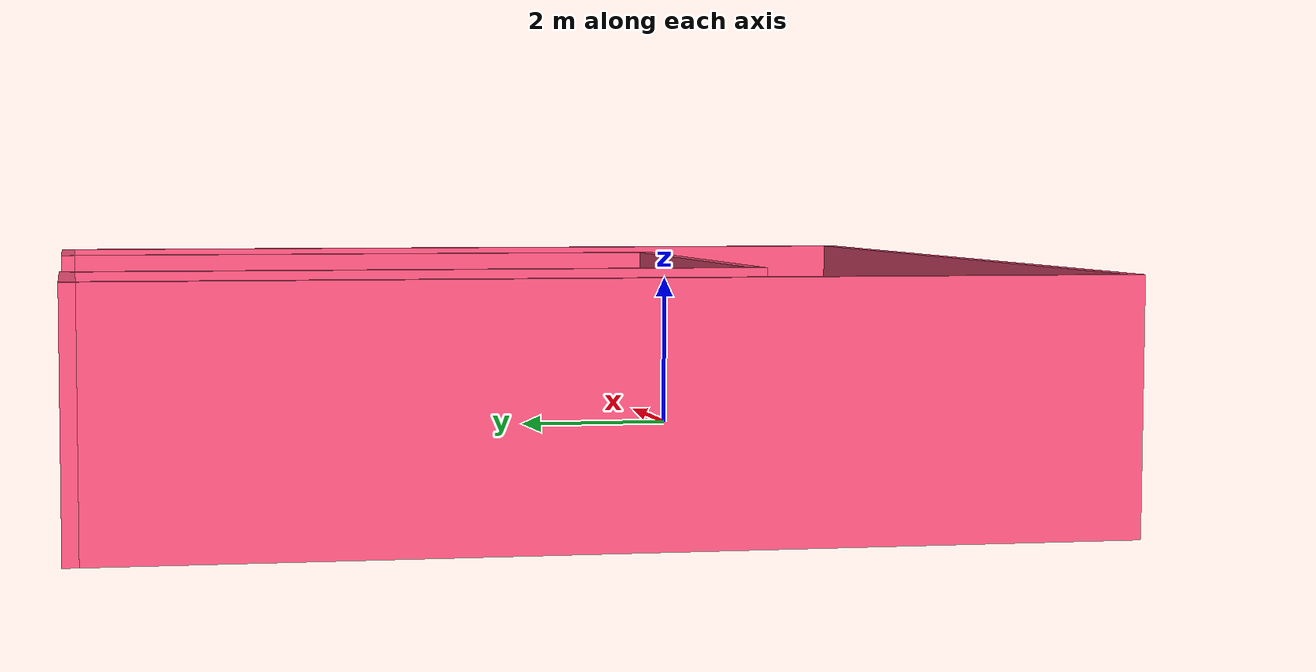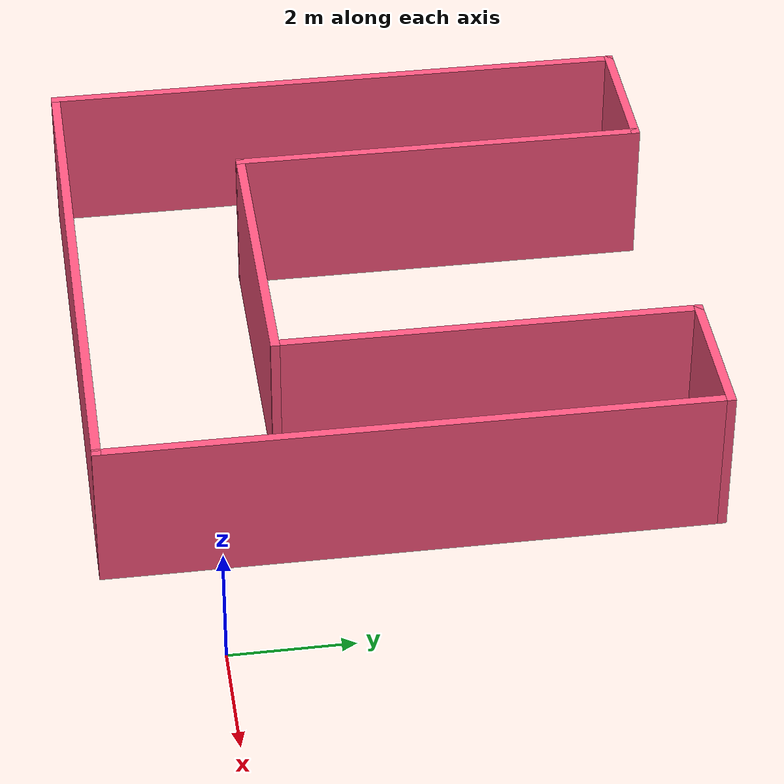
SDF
<?xml version='1.0'?>
<sdf version='1.6'>
  <model name='buildingeditor2'>
    <pose frame=''>-6.99947 3.2118 0 0 -0 0</pose>
    <link name='Wall_1'>
      <collision name='Wall_1_Collision'>
        <geometry>
          <box>
            <size>10 0.15 2.5</size>
          </box>
        </geometry>
        <pose frame=''>0 0 1.25 0 -0 0</pose>
      </collision>
      <visual name='Wall_1_Visual'>
        <pose frame=''>0 0 1.25 0 -0 0</pose>
        <geometry>
          <box>
            <size>10 0.15 2.5</size>
          </box>
        </geometry>
        <material>
          <script>
            <uri>file://media/materials/scripts/gazebo.material</uri>
            <name>Gazebo/Grey</name>
          </script>
          <ambient>1 0.333333 0.498039 1</ambient>
        </material>
        <meta>
          <layer>0</layer>
        </meta>
      </visual>
      <pose frame=''>-4.925 0 0 0 0 -1.5708</pose>
    </link>
    <link name='Wall_10'>
      <collision name='Wall_10_Collision'>
        <geometry>
          <box>
            <size>2.5 0.15 2.5</size>
          </box>
        </geometry>
        <pose frame=''>0 0 1.25 0 -0 0</pose>
      </collision>
      <visual name='Wall_10_Visual'>
        <pose frame=''>0 0 1.25 0 -0 0</pose>
        <geometry>
          <box>
            <size>2.5 0.15 2.5</size>
          </box>
        </geometry>
        <material>
          <script>
            <uri>file://media/materials/scripts/gazebo.material</uri>
            <name>Gazebo/Grey</name>
          </script>
          <ambient>1 0.333333 0.498039 1</ambient>
        </material>
        <meta>
          <layer>0</layer>
        </meta>
      </visual>
      <pose frame=''>3.75 4.925 0 0 -0 3.14159</pose>
    </link>
    <link name='Wall_15'>
      <collision name='Wall_15_Collision'>
        <geometry>
          <box>
            <size>7 0.15 2.5</size>
          </box>
        </geometry>
        <pose frame=''>0 0 1.25 0 -0 0</pose>
      </collision>
      <visual name='Wall_15_Visual'>
        <pose frame=''>0 0 1.25 0 -0 0</pose>
        <geometry>
          <box>
            <size>7 0.15 2.5</size>
          </box>
        </geometry>
        <material>
          <script>
            <uri>file://media/materials/scripts/gazebo.material</uri>
            <name>Gazebo/Grey</name>
          </script>
          <ambient>1 0.333333 0.498039 1</ambient>
        </material>
        <meta>
          <layer>0</layer>
        </meta>
      </visual>
      <pose frame=''>2.575 1.5 0 0 0 -1.5708</pose>
    </link>
    <link name='Wall_19'>
      <collision name='Wall_19_Collision'>
        <geometry>
          <box>
            <size>7 0.15 2.5</size>
          </box>
        </geometry>
        <pose frame=''>0 0 1.25 0 -0 0</pose>
      </collision>
      <visual name='Wall_19_Visual'>
        <pose frame=''>0 0 1.25 0 -0 0</pose>
        <geometry>
          <box>
            <size>7 0.15 2.5</size>
          </box>
        </geometry>
        <material>
          <script>
            <uri>file://media/materials/scripts/gazebo.material</uri>
            <name>Gazebo/Grey</name>
          </script>
          <ambient>1 0.333333 0.498039 1</ambient>
        </material>
        <meta>
          <layer>0</layer>
        </meta>
      </visual>
      <pose frame=''>-2.575 1.5 0 0 0 -1.5708</pose>
    </link>
    <link name='Wall_20'>
      <collision name='Wall_20_Collision'>
        <geometry>
          <box>
            <size>5.3 0.15 2.5</size>
          </box>
        </geometry>
        <pose frame=''>0 0 1.25 0 -0 0</pose>
      </collision>
      <visual name='Wall_20_Visual'>
        <pose frame=''>0 0 1.25 0 -0 0</pose>
        <geometry>
          <box>
            <size>5.3 0.15 2.5</size>
          </box>
        </geometry>
        <material>
          <script>
            <uri>file://media/materials/scripts/gazebo.material</uri>
            <name>Gazebo/Grey</name>
          </script>
          <ambient>1 0.333333 0.498039 1</ambient>
        </material>
        <meta>
          <layer>0</layer>
        </meta>
      </visual>
      <pose frame=''>0 -1.925 0 0 -0 0</pose>
    </link>
    <link name='Wall_3'>
      <collision name='Wall_3_Collision'>
        <geometry>
          <box>
            <size>10 0.15 2.5</size>
          </box>
        </geometry>
        <pose frame=''>0 0 1.25 0 -0 0</pose>
      </collision>
      <visual name='Wall_3_Visual'>
        <pose frame=''>0 0 1.25 0 -0 0</pose>
        <geometry>
          <box>
            <size>10 0.15 2.5</size>
          </box>
        </geometry>
        <material>
          <script>
            <uri>file://media/materials/scripts/gazebo.material</uri>
            <name>Gazebo/Grey</name>
          </script>
          <ambient>1 0.333333 0.498039 1</ambient>
        </material>
        <meta>
          <layer>0</layer>
        </meta>
      </visual>
      <pose frame=''>0 -4.925 0 0 -0 0</pose>
    </link>
    <link name='Wall_5'>
      <collision name='Wall_5_Collision'>
        <geometry>
          <box>
            <size>2.5 0.15 2.5</size>
          </box>
        </geometry>
        <pose frame=''>0 0 1.25 0 -0 0</pose>
      </collision>
      <visual name='Wall_5_Visual'>
        <pose frame=''>0 0 1.25 0 -0 0</pose>
        <geometry>
          <box>
            <size>2.5 0.15 2.5</size>
          </box>
        </geometry>
        <material>
          <script>
            <uri>file://media/materials/scripts/gazebo.material</uri>
            <name>Gazebo/Grey</name>
          </script>
          <ambient>1 0.333333 0.498039 1</ambient>
        </material>
        <meta>
          <layer>0</layer>
        </meta>
      </visual>
      <pose frame=''>-3.75 4.925 0 0 -0 0</pose>
    </link>
    <link name='Wall_8'>
      <collision name='Wall_8_Collision'>
        <geometry>
          <box>
            <size>10 0.15 2.5</size>
          </box>
        </geometry>
        <pose frame=''>0 0 1.25 0 -0 0</pose>
      </collision>
      <visual name='Wall_8_Visual'>
        <pose frame=''>0 0 1.25 0 -0 0</pose>
        <geometry>
          <box>
            <size>10 0.15 2.5</size>
          </box>
        </geometry>
        <material>
          <script>
            <uri>file://media/materials/scripts/gazebo.material</uri>
            <name>Gazebo/Grey</name>
          </script>
          <ambient>1 0.333333 0.498039 1</ambient>
        </material>
        <meta>
          <layer>0</layer>
        </meta>
      </visual>
      <pose frame=''>4.925 0 0 0 -0 1.5708</pose>
    </link>
    <static>1</static>
  </model>
</sdf>
